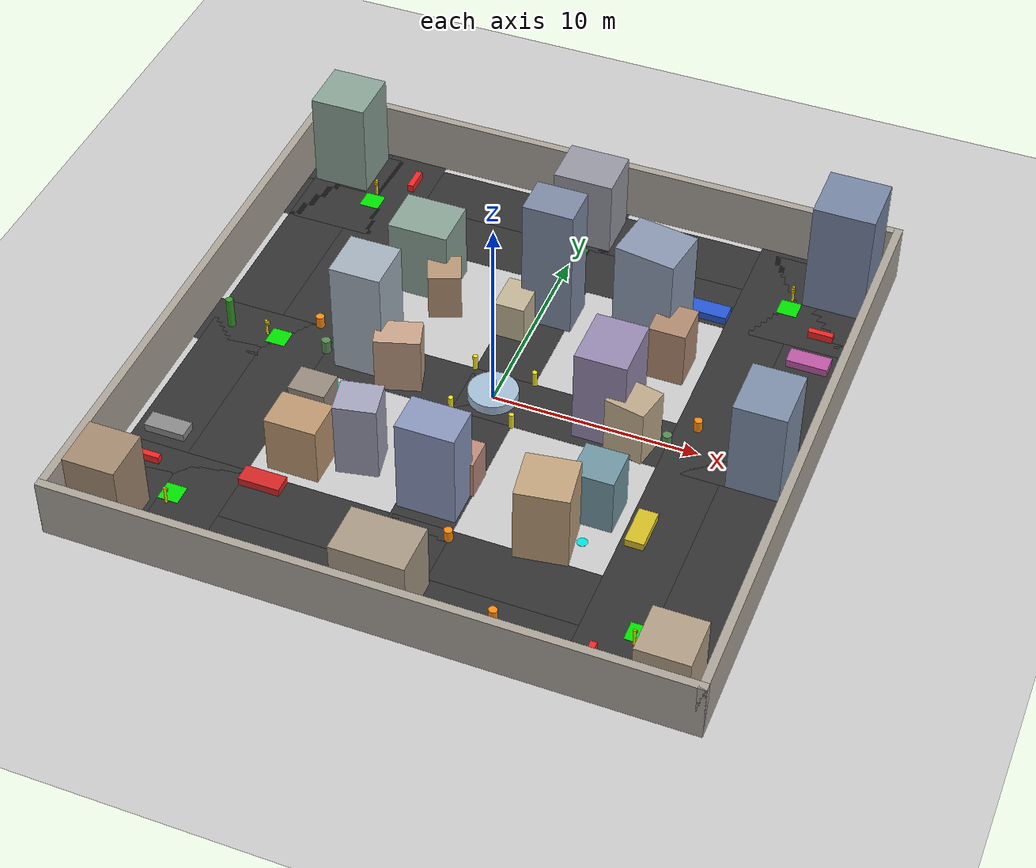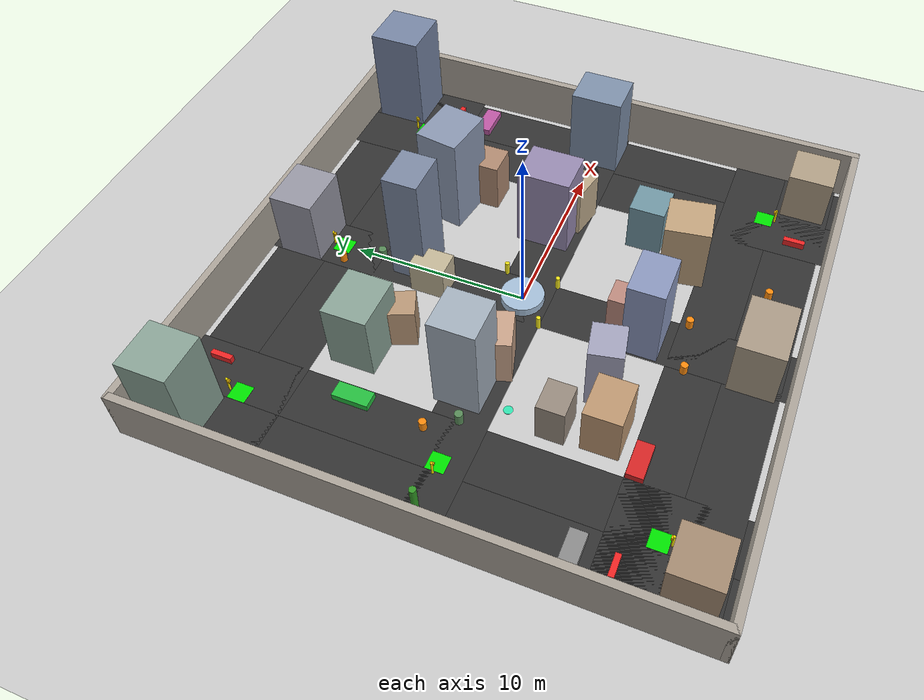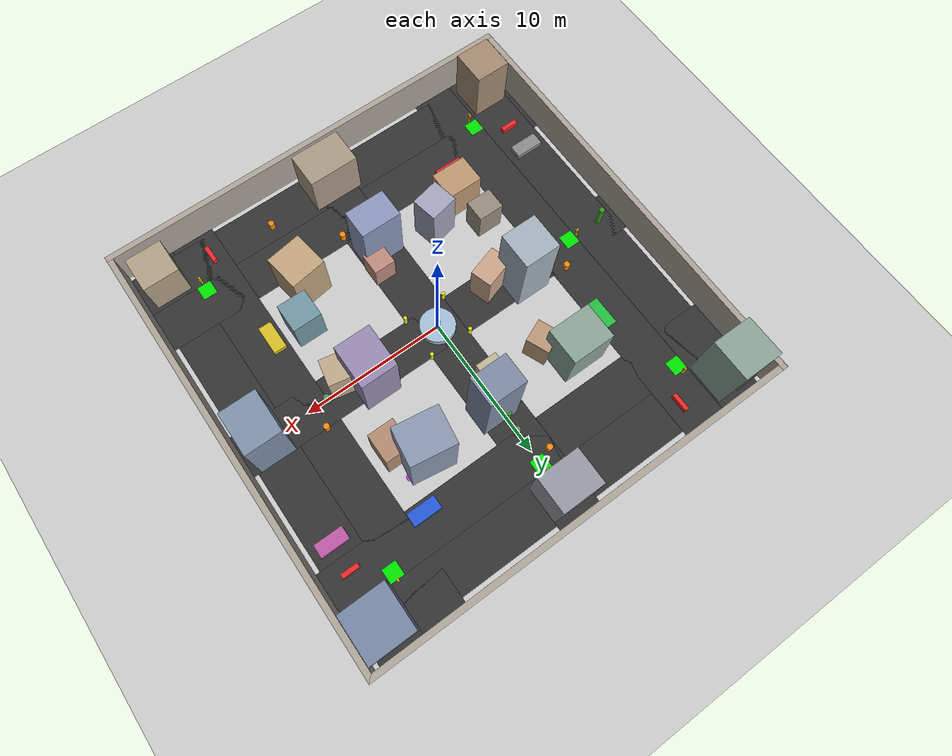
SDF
<sdf version="1.6">
 <world name="city_docking_world">
  <physics type="ode">
   <real_time_update_rate>1000</real_time_update_rate>
   <max_step_size>0.001</max_step_size>
   <real_time_factor>1.0</real_time_factor>
  </physics>
  <scene>
   <ambient>0.45 0.45 0.45 1</ambient>
   <background>0.55 0.65 0.8 1</background>
   <shadows>true</shadows>
  </scene>
  <light name="sun" type="directional">
   <pose>0 0 20 0 0 0</pose>
   <diffuse>0.9 0.9 0.85 1</diffuse>
   <specular>0.3 0.3 0.3 1</specular>
   <direction>-0.4 0.2 -1</direction>
   <attenuation><range>1000</range><constant>0.9</constant></attenuation>
  </light>
  <light name="sl_sw" type="point">
   <pose>-10 -10 4 0 0 0</pose>
   <diffuse>1 0.95 0.7 1</diffuse>
   <attenuation>
    <range>12</range>
    <constant>0.4</constant>
    <linear>0.05</linear>
    <quadratic>0.002</quadratic>
   </attenuation>
  </light>
  <light name="sl_se" type="point">
   <pose>10 -10 4 0 0 0</pose>
   <diffuse>1 0.95 0.7 1</diffuse>
   <attenuation>
    <range>12</range>
    <constant>0.4</constant>
    <linear>0.05</linear>
    <quadratic>0.002</quadratic>
   </attenuation>
  </light>
  <light name="sl_nw" type="point">
   <pose>-10 10 4 0 0 0</pose>
   <diffuse>1 0.95 0.7 1</diffuse>
   <attenuation>
    <range>12</range>
    <constant>0.4</constant>
    <linear>0.05</linear>
    <quadratic>0.002</quadratic>
   </attenuation>
  </light>
  <light name="sl_ne" type="point">
   <pose>10 10 4 0 0 0</pose>
   <diffuse>1 0.95 0.7 1</diffuse>
   <attenuation>
    <range>12</range>
    <constant>0.4</constant>
    <linear>0.05</linear>
    <quadratic>0.002</quadratic>
   </attenuation>
  </light>
  <light name="sl_c" type="point">
   <pose>0 0 5 0 0 0</pose>
   <diffuse>1 0.95 0.7 1</diffuse>
   <attenuation>
    <range>15</range>
    <constant>0.3</constant>
    <linear>0.04</linear>
    <quadratic>0.001</quadratic>
   </attenuation>
  </light>
  <include><uri>model://ground_plane</uri></include>
  <model name="road_ew_centre">
   <static>true</static>
   <pose>0  0 0.005 0 0 0</pose>
   <link name="link">
    <collision name="c"><geometry><box><size>30.0 3.0 0.01</size></box></geometry></collision>
    <visual name="v">
     <geometry><box><size>30.0 3.0 0.01</size></box></geometry>
     <material><ambient>0.18 0.18 0.18 1</ambient><diffuse>0.2 0.2 0.2 1</diffuse></material>
    </visual>
   </link>
  </model>
  <model name="road_ew_south">
   <static>true</static>
   <pose>0 -10 0.005 0 0 0</pose>
   <link name="link">
    <collision name="c"><geometry><box><size>30.0 3.0 0.01</size></box></geometry></collision>
    <visual name="v">
     <geometry><box><size>30.0 3.0 0.01</size></box></geometry>
     <material><ambient>0.18 0.18 0.18 1</ambient><diffuse>0.2 0.2 0.2 1</diffuse></material>
    </visual>
   </link>
  </model>
  <model name="road_ew_north">
   <static>true</static>
   <pose>0 10 0.005 0 0 0</pose>
   <link name="link">
    <collision name="c"><geometry><box><size>30.0 3.0 0.01</size></box></geometry></collision>
    <visual name="v">
     <geometry><box><size>30.0 3.0 0.01</size></box></geometry>
     <material><ambient>0.18 0.18 0.18 1</ambient><diffuse>0.2 0.2 0.2 1</diffuse></material>
    </visual>
   </link>
  </model>
  <model name="road_ns_centre">
   <static>true</static>
   <pose>0  0 0.005 0 0 0</pose>
   <link name="link">
    <collision name="c"><geometry><box><size>3.0 30.0 0.01</size></box></geometry></collision>
    <visual name="v">
     <geometry><box><size>3.0 30.0 0.01</size></box></geometry>
     <material><ambient>0.18 0.18 0.18 1</ambient><diffuse>0.2 0.2 0.2 1</diffuse></material>
    </visual>
   </link>
  </model>
  <model name="road_ns_west">
   <static>true</static>
   <pose>-10 0 0.005 0 0 0</pose>
   <link name="link">
    <collision name="c"><geometry><box><size>3.0 30.0 0.01</size></box></geometry></collision>
    <visual name="v">
     <geometry><box><size>3.0 30.0 0.01</size></box></geometry>
     <material><ambient>0.18 0.18 0.18 1</ambient><diffuse>0.2 0.2 0.2 1</diffuse></material>
    </visual>
   </link>
  </model>
  <model name="road_ns_east">
   <static>true</static>
   <pose>10 0 0.005 0 0 0</pose>
   <link name="link">
    <collision name="c"><geometry><box><size>3.0 30.0 0.01</size></box></geometry></collision>
    <visual name="v">
     <geometry><box><size>3.0 30.0 0.01</size></box></geometry>
     <material><ambient>0.18 0.18 0.18 1</ambient><diffuse>0.2 0.2 0.2 1</diffuse></material>
    </visual>
   </link>
  </model>
  <model name="road_perim_n">
   <static>true</static>
   <pose>0 13 0.005 0 0 0</pose>
   <link name="link">
    <collision name="c"><geometry><box><size>30.0 3.0 0.01</size></box></geometry></collision>
    <visual name="v">
     <geometry><box><size>30.0 3.0 0.01</size></box></geometry>
     <material><ambient>0.18 0.18 0.18 1</ambient><diffuse>0.2 0.2 0.2 1</diffuse></material>
    </visual>
   </link>
  </model>
  <model name="road_perim_s">
   <static>true</static>
   <pose>0 -13 0.005 0 0 0</pose>
   <link name="link">
    <collision name="c"><geometry><box><size>30.0 3.0 0.01</size></box></geometry></collision>
    <visual name="v">
     <geometry><box><size>30.0 3.0 0.01</size></box></geometry>
     <material><ambient>0.18 0.18 0.18 1</ambient><diffuse>0.2 0.2 0.2 1</diffuse></material>
    </visual>
   </link>
  </model>
  <model name="road_perim_w">
   <static>true</static>
   <pose>-13 0 0.005 0 0 0</pose>
   <link name="link">
    <collision name="c"><geometry><box><size>3.0 30.0 0.01</size></box></geometry></collision>
    <visual name="v">
     <geometry><box><size>3.0 30.0 0.01</size></box></geometry>
     <material><ambient>0.18 0.18 0.18 1</ambient><diffuse>0.2 0.2 0.2 1</diffuse></material>
    </visual>
   </link>
  </model>
  <model name="road_perim_e">
   <static>true</static>
   <pose>13 0 0.005 0 0 0</pose>
   <link name="link">
    <collision name="c"><geometry><box><size>3.0 30.0 0.01</size></box></geometry></collision>
    <visual name="v">
     <geometry><box><size>3.0 30.0 0.01</size></box></geometry>
     <material><ambient>0.18 0.18 0.18 1</ambient><diffuse>0.2 0.2 0.2 1</diffuse></material>
    </visual>
   </link>
  </model>
  <model name="wall_north">
   <static>true</static>
   <pose>0 15 1.5 0 0 0</pose>
   <link name="link">
    <collision name="c"><geometry><box><size>30.4 0.4 3.0</size></box></geometry></collision>
    <visual name="v">
     <geometry><box><size>30.4 0.4 3.0</size></box></geometry>
     <material><ambient>0.65 0.62 0.58 1</ambient><diffuse>0.68 0.65 0.61 1</diffuse></material>
    </visual>
   </link>
  </model>
  <model name="wall_south">
   <static>true</static>
   <pose>0 -15 1.5 0 0 0</pose>
   <link name="link">
    <collision name="c"><geometry><box><size>30.4 0.4 3.0</size></box></geometry></collision>
    <visual name="v">
     <geometry><box><size>30.4 0.4 3.0</size></box></geometry>
     <material><ambient>0.65 0.62 0.58 1</ambient><diffuse>0.68 0.65 0.61 1</diffuse></material>
    </visual>
   </link>
  </model>
  <model name="wall_east">
   <static>true</static>
   <pose>15 0 1.5 0 0 0</pose>
   <link name="link">
    <collision name="c"><geometry><box><size>0.4 30.4 3.0</size></box></geometry></collision>
    <visual name="v">
     <geometry><box><size>0.4 30.4 3.0</size></box></geometry>
     <material><ambient>0.65 0.62 0.58 1</ambient><diffuse>0.68 0.65 0.61 1</diffuse></material>
    </visual>
   </link>
  </model>
  <model name="wall_west">
   <static>true</static>
   <pose>-15 0 1.5 0 0 0</pose>
   <link name="link">
    <collision name="c"><geometry><box><size>0.4 30.4 3.0</size></box></geometry></collision>
    <visual name="v">
     <geometry><box><size>0.4 30.4 3.0</size></box></geometry>
     <material><ambient>0.65 0.62 0.58 1</ambient><diffuse>0.68 0.65 0.61 1</diffuse></material>
    </visual>
   </link>
  </model>
  <model name="bldg_sw_a">
   <static>true</static>
   <pose>-6.5 -7.0 1.5 0 0 0</pose>
   <link name="link">
    <collision name="c"><geometry><box><size>2.5 2.0 3.0</size></box></geometry></collision>
    <visual name="v">
     <geometry><box><size>2.5 2.0 3.0</size></box></geometry>
     <material><ambient>0.70 0.55 0.40 1</ambient><diffuse>0.75 0.60 0.45 1</diffuse></material>
    </visual>
   </link>
  </model>
  <model name="bldg_sw_b">
   <static>true</static>
   <pose>-4.0 -6.0 2.0 0 0 0.2</pose>
   <link name="link">
    <collision name="c"><geometry><box><size>2.0 1.8 4.0</size></box></geometry></collision>
    <visual name="v">
     <geometry><box><size>2.0 1.8 4.0</size></box></geometry>
     <material><ambient>0.60 0.60 0.70 1</ambient><diffuse>0.65 0.65 0.75 1</diffuse></material>
    </visual>
   </link>
  </model>
  <model name="bldg_sw_c">
   <static>true</static>
   <pose>-7.0 -4.5 1.25 0 0 0</pose>
   <link name="link">
    <collision name="c"><geometry><box><size>1.8 1.5 2.5</size></box></geometry></collision>
    <visual name="v">
     <geometry><box><size>1.8 1.5 2.5</size></box></geometry>
     <material><ambient>0.55 0.50 0.45 1</ambient><diffuse>0.60 0.55 0.50 1</diffuse></material>
    </visual>
   </link>
  </model>
  <model name="bldg_s_a">
   <static>true</static>
   <pose>0.0 -7.0 2.5 0 0 0</pose>
   <link name="link">
    <collision name="c"><geometry><box><size>2.8 2.0 5.0</size></box></geometry></collision>
    <visual name="v">
     <geometry><box><size>2.8 2.0 5.0</size></box></geometry>
     <material><ambient>0.50 0.55 0.70 1</ambient><diffuse>0.55 0.60 0.75 1</diffuse></material>
    </visual>
   </link>
  </model>
  <model name="bldg_s_b">
   <static>true</static>
   <pose>0.8 -5.5 1.0 0 0 0</pose>
   <link name="link">
    <collision name="c"><geometry><box><size>1.5 1.5 2.0</size></box></geometry></collision>
    <visual name="v">
     <geometry><box><size>1.5 1.5 2.0</size></box></geometry>
     <material><ambient>0.70 0.50 0.45 1</ambient><diffuse>0.75 0.55 0.50 1</diffuse></material>
    </visual>
   </link>
  </model>
  <model name="bldg_se_a">
   <static>true</static>
   <pose>5.5 -7.5 2.0 0 0 0.15</pose>
   <link name="link">
    <collision name="c"><geometry><box><size>2.5 2.5 4.0</size></box></geometry></collision>
    <visual name="v">
     <geometry><box><size>2.5 2.5 4.0</size></box></geometry>
     <material><ambient>0.72 0.60 0.45 1</ambient><diffuse>0.77 0.65 0.50 1</diffuse></material>
    </visual>
   </link>
  </model>
  <model name="bldg_se_b">
   <static>true</static>
   <pose>7.0 -5.0 1.5 0 0 0</pose>
   <link name="link">
    <collision name="c"><geometry><box><size>2.0 2.0 3.0</size></box></geometry></collision>
    <visual name="v">
     <geometry><box><size>2.0 2.0 3.0</size></box></geometry>
     <material><ambient>0.40 0.55 0.60 1</ambient><diffuse>0.45 0.60 0.65 1</diffuse></material>
    </visual>
   </link>
  </model>
  <model name="bldg_w_a">
   <static>true</static>
   <pose>-6.5 0.5 3.0 0 0 0</pose>
   <link name="link">
    <collision name="c"><geometry><box><size>2.5 2.5 6.0</size></box></geometry></collision>
    <visual name="v">
     <geometry><box><size>2.5 2.5 6.0</size></box></geometry>
     <material><ambient>0.60 0.65 0.70 1</ambient><diffuse>0.65 0.70 0.75 1</diffuse></material>
    </visual>
   </link>
  </model>
  <model name="bldg_w_b">
   <static>true</static>
   <pose>-4.5 -0.5 1.5 0 0 0.3</pose>
   <link name="link">
    <collision name="c"><geometry><box><size>2.2 1.5 3.0</size></box></geometry></collision>
    <visual name="v">
     <geometry><box><size>2.2 1.5 3.0</size></box></geometry>
     <material><ambient>0.75 0.60 0.50 1</ambient><diffuse>0.80 0.65 0.55 1</diffuse></material>
    </visual>
   </link>
  </model>
  <model name="plaza_base">
   <static>true</static>
   <pose>0 0 0.25 0 0 0</pose>
   <link name="link">
    <collision name="c">
     <geometry><cylinder><radius>1.2</radius><length>0.5</length></cylinder></geometry>
    </collision>
    <visual name="v">
     <geometry><cylinder><radius>1.2</radius><length>0.5</length></cylinder></geometry>
     <material>
      <ambient>0.6 0.7 0.8 1</ambient>
      <diffuse>0.65 0.75 0.85 1</diffuse>
      <emissive>0.05 0.1 0.15 1</emissive>
     </material>
    </visual>
   </link>
  </model>
  <model name="plaza_jet">
   <static>true</static>
   <pose>0 0 0.65 0 0 0</pose>
   <link name="link">
    <collision name="c">
     <geometry><cylinder><radius>0.15</radius><length>0.8</length></cylinder></geometry>
    </collision>
    <visual name="v">
     <geometry><cylinder><radius>0.15</radius><length>0.8</length></cylinder></geometry>
     <material>
      <ambient>0.3 0.6 0.9 1</ambient>
      <diffuse>0.35 0.65 0.95 1</diffuse>
      <emissive>0.0 0.2 0.4 1</emissive>
     </material>
    </visual>
   </link>
  </model>
  <model name="bldg_e_a">
   <static>true</static>
   <pose>5.5 0.5 2.5 0 0 0</pose>
   <link name="link">
    <collision name="c"><geometry><box><size>2.5 3.0 5.0</size></box></geometry></collision>
    <visual name="v">
     <geometry><box><size>2.5 3.0 5.0</size></box></geometry>
     <material><ambient>0.55 0.50 0.65 1</ambient><diffuse>0.60 0.55 0.70 1</diffuse></material>
    </visual>
   </link>
  </model>
  <model name="bldg_e_b">
   <static>true</static>
   <pose>7.0 -0.5 1.5 0 0 -0.2</pose>
   <link name="link">
    <collision name="c"><geometry><box><size>2.0 1.8 3.0</size></box></geometry></collision>
    <visual name="v">
     <geometry><box><size>2.0 1.8 3.0</size></box></geometry>
     <material><ambient>0.70 0.62 0.50 1</ambient><diffuse>0.75 0.67 0.55 1</diffuse></material>
    </visual>
   </link>
  </model>
  <model name="bldg_nw_a">
   <static>true</static>
   <pose>-6.0 6.5 2.0 0 0 0</pose>
   <link name="link">
    <collision name="c"><geometry><box><size>3.0 2.5 4.0</size></box></geometry></collision>
    <visual name="v">
     <geometry><box><size>3.0 2.5 4.0</size></box></geometry>
     <material><ambient>0.50 0.60 0.55 1</ambient><diffuse>0.55 0.65 0.60 1</diffuse></material>
    </visual>
   </link>
  </model>
  <model name="bldg_nw_b">
   <static>true</static>
   <pose>-4.5 5.0 1.25 0 0 0.4</pose>
   <link name="link">
    <collision name="c"><geometry><box><size>1.6 1.6 2.5</size></box></geometry></collision>
    <visual name="v">
     <geometry><box><size>1.6 1.6 2.5</size></box></geometry>
     <material><ambient>0.68 0.55 0.42 1</ambient><diffuse>0.73 0.60 0.47 1</diffuse></material>
    </visual>
   </link>
  </model>
  <model name="bldg_n_a">
   <static>true</static>
   <pose>0.5 6.5 3.5 0 0 0</pose>
   <link name="link">
    <collision name="c"><geometry><box><size>2.5 2.0 7.0</size></box></geometry></collision>
    <visual name="v">
     <geometry><box><size>2.5 2.0 7.0</size></box></geometry>
     <material><ambient>0.45 0.50 0.60 1</ambient><diffuse>0.50 0.55 0.65 1</diffuse></material>
    </visual>
   </link>
  </model>
  <model name="bldg_n_b">
   <static>true</static>
   <pose>-0.8 5.0 1.0 0 0 0</pose>
   <link name="link">
    <collision name="c"><geometry><box><size>1.5 2.0 2.0</size></box></geometry></collision>
    <visual name="v">
     <geometry><box><size>1.5 2.0 2.0</size></box></geometry>
     <material><ambient>0.72 0.67 0.55 1</ambient><diffuse>0.77 0.72 0.60 1</diffuse></material>
    </visual>
   </link>
  </model>
  <model name="bldg_ne_a">
   <static>true</static>
   <pose>5.5 6.5 3.0 0 0 -0.15</pose>
   <link name="link">
    <collision name="c"><geometry><box><size>3.0 2.5 6.0</size></box></geometry></collision>
    <visual name="v">
     <geometry><box><size>3.0 2.5 6.0</size></box></geometry>
     <material><ambient>0.50 0.55 0.65 1</ambient><diffuse>0.55 0.60 0.70 1</diffuse></material>
    </visual>
   </link>
  </model>
  <model name="bldg_ne_b">
   <static>true</static>
   <pose>7.0 5.0 1.5 0 0 0</pose>
   <link name="link">
    <collision name="c"><geometry><box><size>1.8 2.0 3.0</size></box></geometry></collision>
    <visual name="v">
     <geometry><box><size>1.8 2.0 3.0</size></box></geometry>
     <material><ambient>0.65 0.50 0.40 1</ambient><diffuse>0.70 0.55 0.45 1</diffuse></material>
    </visual>
   </link>
  </model>
  <model name="bldg_oc_sw">
   <static>true</static>
   <pose>-13 -13 2.0 0 0 0</pose>
   <link name="link">
    <collision name="c"><geometry><box><size>2.5 2.5 4.0</size></box></geometry></collision>
    <visual name="v">
     <geometry><box><size>2.5 2.5 4.0</size></box></geometry>
     <material><ambient>0.60 0.50 0.40 1</ambient><diffuse>0.65 0.55 0.45 1</diffuse></material>
    </visual>
   </link>
  </model>
  <model name="bldg_oc_nw">
   <static>true</static>
   <pose>-13 13 2.5 0 0 0</pose>
   <link name="link">
    <collision name="c"><geometry><box><size>2.8 2.8 5.0</size></box></geometry></collision>
    <visual name="v">
     <geometry><box><size>2.8 2.8 5.0</size></box></geometry>
     <material><ambient>0.50 0.60 0.55 1</ambient><diffuse>0.55 0.65 0.60 1</diffuse></material>
    </visual>
   </link>
  </model>
  <model name="bldg_oc_se">
   <static>true</static>
   <pose>13 -13 1.5 0 0 0</pose>
   <link name="link">
    <collision name="c"><geometry><box><size>2.5 2.5 3.0</size></box></geometry></collision>
    <visual name="v">
     <geometry><box><size>2.5 2.5 3.0</size></box></geometry>
     <material><ambient>0.65 0.58 0.48 1</ambient><diffuse>0.70 0.63 0.53 1</diffuse></material>
    </visual>
   </link>
  </model>
  <model name="bldg_oc_ne">
   <static>true</static>
   <pose>13 13 3.0 0 0 0</pose>
   <link name="link">
    <collision name="c"><geometry><box><size>3.0 3.0 6.0</size></box></geometry></collision>
    <visual name="v">
     <geometry><box><size>3.0 3.0 6.0</size></box></geometry>
     <material><ambient>0.42 0.48 0.60 1</ambient><diffuse>0.47 0.53 0.65 1</diffuse></material>
    </visual>
   </link>
  </model>
  <model name="bldg_om_n">
   <static>true</static>
   <pose>0 13 2.0 0 0 0</pose>
   <link name="link">
    <collision name="c"><geometry><box><size>3.0 2.5 4.0</size></box></geometry></collision>
    <visual name="v">
     <geometry><box><size>3.0 2.5 4.0</size></box></geometry>
     <material><ambient>0.55 0.55 0.60 1</ambient><diffuse>0.60 0.60 0.65 1</diffuse></material>
    </visual>
   </link>
  </model>
  <model name="bldg_om_s">
   <static>true</static>
   <pose>0 -13 1.8 0 0 0</pose>
   <link name="link">
    <collision name="c"><geometry><box><size>3.5 2.5 3.5</size></box></geometry></collision>
    <visual name="v">
     <geometry><box><size>3.5 2.5 3.5</size></box></geometry>
     <material><ambient>0.62 0.56 0.48 1</ambient><diffuse>0.67 0.61 0.53 1</diffuse></material>
    </visual>
   </link>
  </model>
  <model name="bldg_om_e">
   <static>true</static>
   <pose>13 0 2.5 0 0 0</pose>
   <link name="link">
    <collision name="c"><geometry><box><size>2.5 3.0 5.0</size></box></geometry></collision>
    <visual name="v">
     <geometry><box><size>2.5 3.0 5.0</size></box></geometry>
     <material><ambient>0.45 0.52 0.62 1</ambient><diffuse>0.50 0.57 0.67 1</diffuse></material>
    </visual>
   </link>
  </model>
  <model name="car_1">
   <static>true</static>
   <pose>-7.5 -9.0 0.2 0 0 0</pose>
   <link name="link">
    <collision name="c"><geometry><box><size>2.0 0.9 0.4</size></box></geometry></collision>
    <visual name="v">
     <geometry><box><size>2.0 0.9 0.4</size></box></geometry>
     <material><ambient>0.8 0.1 0.1 1</ambient><diffuse>0.85 0.15 0.15 1</diffuse></material>
    </visual>
   </link>
  </model>
  <model name="car_2">
   <static>true</static>
   <pose>7.5  9.2 0.2 0 0 0</pose>
   <link name="link">
    <collision name="c"><geometry><box><size>2.0 0.9 0.4</size></box></geometry></collision>
    <visual name="v">
     <geometry><box><size>2.0 0.9 0.4</size></box></geometry>
     <material><ambient>0.1 0.3 0.8 1</ambient><diffuse>0.15 0.35 0.85 1</diffuse></material>
    </visual>
   </link>
  </model>
  <model name="car_3">
   <static>true</static>
   <pose>-9.2 5.5 0.2 0 0 1.5708</pose>
   <link name="link">
    <collision name="c"><geometry><box><size>2.0 0.9 0.4</size></box></geometry></collision>
    <visual name="v">
     <geometry><box><size>2.0 0.9 0.4</size></box></geometry>
     <material><ambient>0.1 0.7 0.2 1</ambient><diffuse>0.15 0.75 0.25 1</diffuse></material>
    </visual>
   </link>
  </model>
  <model name="car_4">
   <static>true</static>
   <pose>9.2 -5.5 0.2 0 0 1.5708</pose>
   <link name="link">
    <collision name="c"><geometry><box><size>2.0 0.9 0.4</size></box></geometry></collision>
    <visual name="v">
     <geometry><box><size>2.0 0.9 0.4</size></box></geometry>
     <material><ambient>0.8 0.7 0.1 1</ambient><diffuse>0.85 0.75 0.15 1</diffuse></material>
    </visual>
   </link>
  </model>
  <model name="car_5">
   <static>true</static>
   <pose>-13.0 -7.5 0.2 0 0 0</pose>
   <link name="link">
    <collision name="c"><geometry><box><size>2.0 0.9 0.4</size></box></geometry></collision>
    <visual name="v">
     <geometry><box><size>2.0 0.9 0.4</size></box></geometry>
     <material><ambient>0.5 0.5 0.5 1</ambient><diffuse>0.55 0.55 0.55 1</diffuse></material>
    </visual>
   </link>
  </model>
  <model name="car_6">
   <static>true</static>
   <pose>13.0 7.5 0.2 0 0 0</pose>
   <link name="link">
    <collision name="c"><geometry><box><size>2.0 0.9 0.4</size></box></geometry></collision>
    <visual name="v">
     <geometry><box><size>2.0 0.9 0.4</size></box></geometry>
     <material><ambient>0.7 0.3 0.6 1</ambient><diffuse>0.75 0.35 0.65 1</diffuse></material>
    </visual>
   </link>
  </model>
  <model name="cone_1">
   <static>true</static>
   <pose>-1.5  -9.5 0.3 0 0 0</pose>
   <link name="link">
    <collision name="c">
     <geometry><cylinder><radius>0.2</radius><length>0.6</length></cylinder></geometry>
    </collision>
    <visual name="v">
     <geometry><cylinder><radius>0.2</radius><length>0.6</length></cylinder></geometry>
     <material><ambient>1.0 0.5 0.0 1</ambient><diffuse>1.0 0.55 0.05 1</diffuse></material>
    </visual>
   </link>
  </model>
  <model name="cone_2">
   <static>true</static>
   <pose>1.5  -9.0 0.3 0 0 0</pose>
   <link name="link">
    <collision name="c">
     <geometry><cylinder><radius>0.2</radius><length>0.6</length></cylinder></geometry>
    </collision>
    <visual name="v">
     <geometry><cylinder><radius>0.2</radius><length>0.6</length></cylinder></geometry>
     <material><ambient>1.0 0.5 0.0 1</ambient><diffuse>1.0 0.55 0.05 1</diffuse></material>
    </visual>
   </link>
  </model>
  <model name="cone_3">
   <static>true</static>
   <pose>-9.5   1.5 0.3 0 0 0</pose>
   <link name="link">
    <collision name="c">
     <geometry><cylinder><radius>0.2</radius><length>0.6</length></cylinder></geometry>
    </collision>
    <visual name="v">
     <geometry><cylinder><radius>0.2</radius><length>0.6</length></cylinder></geometry>
     <material><ambient>1.0 0.5 0.0 1</ambient><diffuse>1.0 0.55 0.05 1</diffuse></material>
    </visual>
   </link>
  </model>
  <model name="cone_4">
   <static>true</static>
   <pose>9.5   1.5 0.3 0 0 0</pose>
   <link name="link">
    <collision name="c">
     <geometry><cylinder><radius>0.2</radius><length>0.6</length></cylinder></geometry>
    </collision>
    <visual name="v">
     <geometry><cylinder><radius>0.2</radius><length>0.6</length></cylinder></geometry>
     <material><ambient>1.0 0.5 0.0 1</ambient><diffuse>1.0 0.55 0.05 1</diffuse></material>
    </visual>
   </link>
  </model>
  <model name="cone_5">
   <static>true</static>
   <pose>-1.0  10.5 0.3 0 0 0</pose>
   <link name="link">
    <collision name="c">
     <geometry><cylinder><radius>0.2</radius><length>0.6</length></cylinder></geometry>
    </collision>
    <visual name="v">
     <geometry><cylinder><radius>0.2</radius><length>0.6</length></cylinder></geometry>
     <material><ambient>1.0 0.5 0.0 1</ambient><diffuse>1.0 0.55 0.05 1</diffuse></material>
    </visual>
   </link>
  </model>
  <model name="cone_6">
   <static>true</static>
   <pose>5.0 -12.5 0.3 0 0 0</pose>
   <link name="link">
    <collision name="c">
     <geometry><cylinder><radius>0.2</radius><length>0.6</length></cylinder></geometry>
    </collision>
    <visual name="v">
     <geometry><cylinder><radius>0.2</radius><length>0.6</length></cylinder></geometry>
     <material><ambient>1.0 0.5 0.0 1</ambient><diffuse>1.0 0.55 0.05 1</diffuse></material>
    </visual>
   </link>
  </model>
  <model name="tree_1">
   <static>true</static>
   <pose>-7.5  0.0 0.8 0 0 0</pose>
   <link name="link">
    <collision name="c">
     <geometry><cylinder><radius>0.18</radius><length>1.6</length></cylinder></geometry>
    </collision>
    <visual name="v">
     <geometry><cylinder><radius>0.18</radius><length>1.6</length></cylinder></geometry>
     <material><ambient>0.15 0.55 0.10 1</ambient><diffuse>0.20 0.60 0.15 1</diffuse></material>
    </visual>
   </link>
  </model>
  <model name="tree_2">
   <static>true</static>
   <pose>7.5  0.0 0.8 0 0 0</pose>
   <link name="link">
    <collision name="c">
     <geometry><cylinder><radius>0.18</radius><length>1.6</length></cylinder></geometry>
    </collision>
    <visual name="v">
     <geometry><cylinder><radius>0.18</radius><length>1.6</length></cylinder></geometry>
     <material><ambient>0.15 0.55 0.10 1</ambient><diffuse>0.20 0.60 0.15 1</diffuse></material>
    </visual>
   </link>
  </model>
  <model name="tree_3">
   <static>true</static>
   <pose>0.0 -7.5 0.8 0 0 0</pose>
   <link name="link">
    <collision name="c">
     <geometry><cylinder><radius>0.18</radius><length>1.6</length></cylinder></geometry>
    </collision>
    <visual name="v">
     <geometry><cylinder><radius>0.18</radius><length>1.6</length></cylinder></geometry>
     <material><ambient>0.15 0.55 0.10 1</ambient><diffuse>0.20 0.60 0.15 1</diffuse></material>
    </visual>
   </link>
  </model>
  <model name="tree_4">
   <static>true</static>
   <pose>0.0  7.5 0.8 0 0 0</pose>
   <link name="link">
    <collision name="c">
     <geometry><cylinder><radius>0.18</radius><length>1.6</length></cylinder></geometry>
    </collision>
    <visual name="v">
     <geometry><cylinder><radius>0.18</radius><length>1.6</length></cylinder></geometry>
     <material><ambient>0.15 0.55 0.10 1</ambient><diffuse>0.20 0.60 0.15 1</diffuse></material>
    </visual>
   </link>
  </model>
  <model name="tree_5">
   <static>true</static>
   <pose>-13.5  0.0 0.8 0 0 0</pose>
   <link name="link">
    <collision name="c">
     <geometry><cylinder><radius>0.18</radius><length>1.6</length></cylinder></geometry>
    </collision>
    <visual name="v">
     <geometry><cylinder><radius>0.18</radius><length>1.6</length></cylinder></geometry>
     <material><ambient>0.15 0.55 0.10 1</ambient><diffuse>0.20 0.60 0.15 1</diffuse></material>
    </visual>
   </link>
  </model>
  <model name="tree_6">
   <static>true</static>
   <pose>13.5  0.0 0.8 0 0 0</pose>
   <link name="link">
    <collision name="c">
     <geometry><cylinder><radius>0.18</radius><length>1.6</length></cylinder></geometry>
    </collision>
    <visual name="v">
     <geometry><cylinder><radius>0.18</radius><length>1.6</length></cylinder></geometry>
     <material><ambient>0.15 0.55 0.10 1</ambient><diffuse>0.20 0.60 0.15 1</diffuse></material>
    </visual>
   </link>
  </model>
  <model name="tree_7">
   <static>true</static>
   <pose>0.0  13.5 0.8 0 0 0</pose>
   <link name="link">
    <collision name="c">
     <geometry><cylinder><radius>0.18</radius><length>1.6</length></cylinder></geometry>
    </collision>
    <visual name="v">
     <geometry><cylinder><radius>0.18</radius><length>1.6</length></cylinder></geometry>
     <material><ambient>0.15 0.55 0.10 1</ambient><diffuse>0.20 0.60 0.15 1</diffuse></material>
    </visual>
   </link>
  </model>
  <model name="tree_8">
   <static>true</static>
   <pose>0.0 -13.5 0.8 0 0 0</pose>
   <link name="link">
    <collision name="c">
     <geometry><cylinder><radius>0.18</radius><length>1.6</length></cylinder></geometry>
    </collision>
    <visual name="v">
     <geometry><cylinder><radius>0.18</radius><length>1.6</length></cylinder></geometry>
     <material><ambient>0.15 0.55 0.10 1</ambient><diffuse>0.20 0.60 0.15 1</diffuse></material>
    </visual>
   </link>
  </model>
  <model name="bin_1">
   <static>true</static>
   <pose>-8.5  0.0 0.35 0 0 0</pose>
   <link name="link">
    <collision name="c">
     <geometry><cylinder><radius>0.22</radius><length>0.7</length></cylinder></geometry>
    </collision>
    <visual name="v">
     <geometry><cylinder><radius>0.22</radius><length>0.7</length></cylinder></geometry>
     <material><ambient>0.3 0.5 0.3 1</ambient><diffuse>0.35 0.55 0.35 1</diffuse></material>
    </visual>
   </link>
  </model>
  <model name="bin_2">
   <static>true</static>
   <pose>0.0  8.5 0.35 0 0 0</pose>
   <link name="link">
    <collision name="c">
     <geometry><cylinder><radius>0.22</radius><length>0.7</length></cylinder></geometry>
    </collision>
    <visual name="v">
     <geometry><cylinder><radius>0.22</radius><length>0.7</length></cylinder></geometry>
     <material><ambient>0.3 0.5 0.3 1</ambient><diffuse>0.35 0.55 0.35 1</diffuse></material>
    </visual>
   </link>
  </model>
  <model name="bin_3">
   <static>true</static>
   <pose>8.5  0.0 0.35 0 0 0</pose>
   <link name="link">
    <collision name="c">
     <geometry><cylinder><radius>0.22</radius><length>0.7</length></cylinder></geometry>
    </collision>
    <visual name="v">
     <geometry><cylinder><radius>0.22</radius><length>0.7</length></cylinder></geometry>
     <material><ambient>0.3 0.5 0.3 1</ambient><diffuse>0.35 0.55 0.35 1</diffuse></material>
    </visual>
   </link>
  </model>
  <model name="bollard_1">
   <static>true</static>
   <pose>-1.5  1.5 0.4 0 0 0</pose>
   <link name="link">
    <collision name="c">
     <geometry><cylinder><radius>0.12</radius><length>0.8</length></cylinder></geometry>
    </collision>
    <visual name="v">
     <geometry><cylinder><radius>0.12</radius><length>0.8</length></cylinder></geometry>
     <material><ambient>0.9 0.85 0.05 1</ambient><diffuse>0.95 0.90 0.10 1</diffuse></material>
    </visual>
   </link>
  </model>
  <model name="bollard_2">
   <static>true</static>
   <pose>1.5  1.5 0.4 0 0 0</pose>
   <link name="link">
    <collision name="c">
     <geometry><cylinder><radius>0.12</radius><length>0.8</length></cylinder></geometry>
    </collision>
    <visual name="v">
     <geometry><cylinder><radius>0.12</radius><length>0.8</length></cylinder></geometry>
     <material><ambient>0.9 0.85 0.05 1</ambient><diffuse>0.95 0.90 0.10 1</diffuse></material>
    </visual>
   </link>
  </model>
  <model name="bollard_3">
   <static>true</static>
   <pose>1.5 -1.5 0.4 0 0 0</pose>
   <link name="link">
    <collision name="c">
     <geometry><cylinder><radius>0.12</radius><length>0.8</length></cylinder></geometry>
    </collision>
    <visual name="v">
     <geometry><cylinder><radius>0.12</radius><length>0.8</length></cylinder></geometry>
     <material><ambient>0.9 0.85 0.05 1</ambient><diffuse>0.95 0.90 0.10 1</diffuse></material>
    </visual>
   </link>
  </model>
  <model name="bollard_4">
   <static>true</static>
   <pose>-1.5 -1.5 0.4 0 0 0</pose>
   <link name="link">
    <collision name="c">
     <geometry><cylinder><radius>0.12</radius><length>0.8</length></cylinder></geometry>
    </collision>
    <visual name="v">
     <geometry><cylinder><radius>0.12</radius><length>0.8</length></cylinder></geometry>
     <material><ambient>0.9 0.85 0.05 1</ambient><diffuse>0.95 0.90 0.10 1</diffuse></material>
    </visual>
   </link>
  </model>
  <model name="barrier_1">
   <static>true</static>
   <pose>-13 -9.5 0.2 0 0 0</pose>
   <link name="link">
    <collision name="c"><geometry><box><size>1.2 0.3 0.4</size></box></geometry></collision>
    <visual name="v">
     <geometry><box><size>1.2 0.3 0.4</size></box></geometry>
     <material><ambient>0.9 0.1 0.1 1</ambient><diffuse>0.95 0.15 0.15 1</diffuse></material>
    </visual>
   </link>
  </model>
  <model name="barrier_2">
   <static>true</static>
   <pose>13  9.5 0.2 0 0 0</pose>
   <link name="link">
    <collision name="c"><geometry><box><size>1.2 0.3 0.4</size></box></geometry></collision>
    <visual name="v">
     <geometry><box><size>1.2 0.3 0.4</size></box></geometry>
     <material><ambient>0.9 0.1 0.1 1</ambient><diffuse>0.95 0.15 0.15 1</diffuse></material>
    </visual>
   </link>
  </model>
  <model name="barrier_3">
   <static>true</static>
   <pose>-9.5  13  0.2 0 0 1.5708</pose>
   <link name="link">
    <collision name="c"><geometry><box><size>1.2 0.3 0.4</size></box></geometry></collision>
    <visual name="v">
     <geometry><box><size>1.2 0.3 0.4</size></box></geometry>
     <material><ambient>0.9 0.1 0.1 1</ambient><diffuse>0.95 0.15 0.15 1</diffuse></material>
    </visual>
   </link>
  </model>
  <model name="barrier_4">
   <static>true</static>
   <pose>9.5 -13  0.2 0 0 1.5708</pose>
   <link name="link">
    <collision name="c"><geometry><box><size>1.2 0.3 0.4</size></box></geometry></collision>
    <visual name="v">
     <geometry><box><size>1.2 0.3 0.4</size></box></geometry>
     <material><ambient>0.9 0.1 0.1 1</ambient><diffuse>0.95 0.15 0.15 1</diffuse></material>
    </visual>
   </link>
  </model>
  <model name="dock_pad_1">
   <static>true</static>
   <pose>-11.0 -11.0 0.01 0 0 0</pose>
   <link name="link">
    <collision name="c"><geometry><box><size>1.0 1.0 0.02</size></box></geometry></collision>
    <visual name="v">
     <geometry><box><size>1.0 1.0 0.02</size></box></geometry>
     <material>
      <ambient>0.0 0.9 0.0 1</ambient>
      <diffuse>0.0 0.9 0.0 1</diffuse>
      <emissive>0.0 0.3 0.0 1</emissive>
     </material>
    </visual>
   </link>
  </model>
  <model name="dock_pole_1">
   <static>true</static>
   <pose>-11.0 -11.6 0.45 0 0 0</pose>
   <link name="link">
    <collision name="c">
     <geometry><cylinder><radius>0.06</radius><length>0.9</length></cylinder></geometry>
    </collision>
    <visual name="v">
     <geometry><cylinder><radius>0.06</radius><length>0.9</length></cylinder></geometry>
     <material>
      <ambient>1.0 0.9 0.0 1</ambient>
      <diffuse>1.0 0.9 0.0 1</diffuse>
      <emissive>0.5 0.4 0.0 1</emissive>
     </material>
    </visual>
   </link>
  </model>
  <model name="dock_conn_1">
   <static>true</static>
   <pose>-11.0 -11.52 0.72 0 0 0</pose>
   <link name="link">
    <collision name="c"><geometry><box><size>0.18 0.1 0.18</size></box></geometry></collision>
    <visual name="v">
     <geometry><box><size>0.18 0.1 0.18</size></box></geometry>
     <material><ambient>0.9 0.7 0.0 1</ambient><diffuse>0.9 0.7 0.0 1</diffuse></material>
    </visual>
   </link>
  </model>
  <model name="dock_pad_2">
   <static>true</static>
   <pose>11.0 -11.0 0.01 0 0 0</pose>
   <link name="link">
    <collision name="c"><geometry><box><size>1.0 1.0 0.02</size></box></geometry></collision>
    <visual name="v">
     <geometry><box><size>1.0 1.0 0.02</size></box></geometry>
     <material>
      <ambient>0.0 0.9 0.0 1</ambient>
      <diffuse>0.0 0.9 0.0 1</diffuse>
      <emissive>0.0 0.3 0.0 1</emissive>
     </material>
    </visual>
   </link>
  </model>
  <model name="dock_pole_2">
   <static>true</static>
   <pose>11.0 -11.6 0.45 0 0 0</pose>
   <link name="link">
    <collision name="c">
     <geometry><cylinder><radius>0.06</radius><length>0.9</length></cylinder></geometry>
    </collision>
    <visual name="v">
     <geometry><cylinder><radius>0.06</radius><length>0.9</length></cylinder></geometry>
     <material>
      <ambient>1.0 0.9 0.0 1</ambient>
      <diffuse>1.0 0.9 0.0 1</diffuse>
      <emissive>0.5 0.4 0.0 1</emissive>
     </material>
    </visual>
   </link>
  </model>
  <model name="dock_conn_2">
   <static>true</static>
   <pose>11.0 -11.52 0.72 0 0 0</pose>
   <link name="link">
    <collision name="c"><geometry><box><size>0.18 0.1 0.18</size></box></geometry></collision>
    <visual name="v">
     <geometry><box><size>0.18 0.1 0.18</size></box></geometry>
     <material><ambient>0.9 0.7 0.0 1</ambient><diffuse>0.9 0.7 0.0 1</diffuse></material>
    </visual>
   </link>
  </model>
  <model name="dock_pad_3">
   <static>true</static>
   <pose>-11.0 11.0 0.01 0 0 0</pose>
   <link name="link">
    <collision name="c"><geometry><box><size>1.0 1.0 0.02</size></box></geometry></collision>
    <visual name="v">
     <geometry><box><size>1.0 1.0 0.02</size></box></geometry>
     <material>
      <ambient>0.0 0.9 0.0 1</ambient>
      <diffuse>0.0 0.9 0.0 1</diffuse>
      <emissive>0.0 0.3 0.0 1</emissive>
     </material>
    </visual>
   </link>
  </model>
  <model name="dock_pole_3">
   <static>true</static>
   <pose>-11.0 11.6 0.45 0 0 0</pose>
   <link name="link">
    <collision name="c">
     <geometry><cylinder><radius>0.06</radius><length>0.9</length></cylinder></geometry>
    </collision>
    <visual name="v">
     <geometry><cylinder><radius>0.06</radius><length>0.9</length></cylinder></geometry>
     <material>
      <ambient>1.0 0.9 0.0 1</ambient>
      <diffuse>1.0 0.9 0.0 1</diffuse>
      <emissive>0.5 0.4 0.0 1</emissive>
     </material>
    </visual>
   </link>
  </model>
  <model name="dock_conn_3">
   <static>true</static>
   <pose>-11.0 11.52 0.72 0 0 0</pose>
   <link name="link">
    <collision name="c"><geometry><box><size>0.18 0.1 0.18</size></box></geometry></collision>
    <visual name="v">
     <geometry><box><size>0.18 0.1 0.18</size></box></geometry>
     <material><ambient>0.9 0.7 0.0 1</ambient><diffuse>0.9 0.7 0.0 1</diffuse></material>
    </visual>
   </link>
  </model>
  <model name="dock_pad_4">
   <static>true</static>
   <pose>11.0 11.0 0.01 0 0 0</pose>
   <link name="link">
    <collision name="c"><geometry><box><size>1.0 1.0 0.02</size></box></geometry></collision>
    <visual name="v">
     <geometry><box><size>1.0 1.0 0.02</size></box></geometry>
     <material>
      <ambient>0.0 0.9 0.0 1</ambient>
      <diffuse>0.0 0.9 0.0 1</diffuse>
      <emissive>0.0 0.3 0.0 1</emissive>
     </material>
    </visual>
   </link>
  </model>
  <model name="dock_pole_4">
   <static>true</static>
   <pose>11.0 11.6 0.45 0 0 0</pose>
   <link name="link">
    <collision name="c">
     <geometry><cylinder><radius>0.06</radius><length>0.9</length></cylinder></geometry>
    </collision>
    <visual name="v">
     <geometry><cylinder><radius>0.06</radius><length>0.9</length></cylinder></geometry>
     <material>
      <ambient>1.0 0.9 0.0 1</ambient>
      <diffuse>1.0 0.9 0.0 1</diffuse>
      <emissive>0.5 0.4 0.0 1</emissive>
     </material>
    </visual>
   </link>
  </model>
  <model name="dock_conn_4">
   <static>true</static>
   <pose>11.0 11.52 0.72 0 0 0</pose>
   <link name="link">
    <collision name="c"><geometry><box><size>0.18 0.1 0.18</size></box></geometry></collision>
    <visual name="v">
     <geometry><box><size>0.18 0.1 0.18</size></box></geometry>
     <material><ambient>0.9 0.7 0.0 1</ambient><diffuse>0.9 0.7 0.0 1</diffuse></material>
    </visual>
   </link>
  </model>
  <model name="dock_pad_5">
   <static>true</static>
   <pose>-11.0 0.0 0.01 0 0 0</pose>
   <link name="link">
    <collision name="c"><geometry><box><size>1.0 1.0 0.02</size></box></geometry></collision>
    <visual name="v">
     <geometry><box><size>1.0 1.0 0.02</size></box></geometry>
     <material>
      <ambient>0.0 0.9 0.0 1</ambient>
      <diffuse>0.0 0.9 0.0 1</diffuse>
      <emissive>0.0 0.3 0.0 1</emissive>
     </material>
    </visual>
   </link>
  </model>
  <model name="dock_pole_5">
   <static>true</static>
   <pose>-11.6 0.0 0.45 0 0 0</pose>
   <link name="link">
    <collision name="c">
     <geometry><cylinder><radius>0.06</radius><length>0.9</length></cylinder></geometry>
    </collision>
    <visual name="v">
     <geometry><cylinder><radius>0.06</radius><length>0.9</length></cylinder></geometry>
     <material>
      <ambient>1.0 0.9 0.0 1</ambient>
      <diffuse>1.0 0.9 0.0 1</diffuse>
      <emissive>0.5 0.4 0.0 1</emissive>
     </material>
    </visual>
   </link>
  </model>
  <model name="dock_conn_5">
   <static>true</static>
   <pose>-11.52 0.0 0.72 0 0 0</pose>
   <link name="link">
    <collision name="c"><geometry><box><size>0.1 0.18 0.18</size></box></geometry></collision>
    <visual name="v">
     <geometry><box><size>0.1 0.18 0.18</size></box></geometry>
     <material><ambient>0.9 0.7 0.0 1</ambient><diffuse>0.9 0.7 0.0 1</diffuse></material>
    </visual>
   </link>
  </model>
  <model name="dock_pad_6">
   <static>true</static>
   <pose>0.0 11.0 0.01 0 0 0</pose>
   <link name="link">
    <collision name="c"><geometry><box><size>1.0 1.0 0.02</size></box></geometry></collision>
    <visual name="v">
     <geometry><box><size>1.0 1.0 0.02</size></box></geometry>
     <material>
      <ambient>0.0 0.9 0.0 1</ambient>
      <diffuse>0.0 0.9 0.0 1</diffuse>
      <emissive>0.0 0.3 0.0 1</emissive>
     </material>
    </visual>
   </link>
  </model>
  <model name="dock_pole_6">
   <static>true</static>
   <pose>0.0 11.6 0.45 0 0 0</pose>
   <link name="link">
    <collision name="c">
     <geometry><cylinder><radius>0.06</radius><length>0.9</length></cylinder></geometry>
    </collision>
    <visual name="v">
     <geometry><cylinder><radius>0.06</radius><length>0.9</length></cylinder></geometry>
     <material>
      <ambient>1.0 0.9 0.0 1</ambient>
      <diffuse>1.0 0.9 0.0 1</diffuse>
      <emissive>0.5 0.4 0.0 1</emissive>
     </material>
    </visual>
   </link>
  </model>
  <model name="dock_conn_6">
   <static>true</static>
   <pose>0.0 11.52 0.72 0 0 0</pose>
   <link name="link">
    <collision name="c"><geometry><box><size>0.18 0.1 0.18</size></box></geometry></collision>
    <visual name="v">
     <geometry><box><size>0.18 0.1 0.18</size></box></geometry>
     <material><ambient>0.9 0.7 0.0 1</ambient><diffuse>0.9 0.7 0.0 1</diffuse></material>
    </visual>
   </link>
  </model>
  <model name="wp_1">
   <static>true</static>
   <pose>-7.0 -7.0 0.01 0 0 0</pose>
   <link name="link">
    <visual name="v">
     <geometry><cylinder><radius>0.25</radius><length>0.02</length></cylinder></geometry>
     <material><ambient>1 0 0 0.9</ambient><diffuse>1 0 0 0.9</diffuse><emissive>0.4 0 0 1</emissive></material>
    </visual>
   </link>
  </model>
  <model name="wp_2">
   <static>true</static>
   <pose>0.0 -7.0 0.01 0 0 0</pose>
   <link name="link">
    <visual name="v">
     <geometry><cylinder><radius>0.25</radius><length>0.02</length></cylinder></geometry>
     <material>
      <ambient>0 0.2 1 0.9</ambient>
      <diffuse>0 0.2 1 0.9</diffuse>
      <emissive>0 0 0.4 1</emissive>
     </material>
    </visual>
   </link>
  </model>
  <model name="wp_3">
   <static>true</static>
   <pose>7.0 -7.0 0.01 0 0 0</pose>
   <link name="link">
    <visual name="v">
     <geometry><cylinder><radius>0.25</radius><length>0.02</length></cylinder></geometry>
     <material>
      <ambient>0 0.9 0.9 0.9</ambient>
      <diffuse>0 0.9 0.9 0.9</diffuse>
      <emissive>0 0.3 0.3 1</emissive>
     </material>
    </visual>
   </link>
  </model>
  <model name="wp_4">
   <static>true</static>
   <pose>-7.0 0.0 0.01 0 0 0</pose>
   <link name="link">
    <visual name="v">
     <geometry><cylinder><radius>0.25</radius><length>0.02</length></cylinder></geometry>
     <material>
      <ambient>0.9 0 0.9 0.9</ambient>
      <diffuse>0.9 0 0.9 0.9</diffuse>
      <emissive>0.3 0 0.3 1</emissive>
     </material>
    </visual>
   </link>
  </model>
  <model name="wp_5">
   <static>true</static>
   <pose>7.0 0.0 0.01 0 0 0</pose>
   <link name="link">
    <visual name="v">
     <geometry><cylinder><radius>0.25</radius><length>0.02</length></cylinder></geometry>
     <material>
      <ambient>1 0.6 0 0.9</ambient>
      <diffuse>1 0.6 0 0.9</diffuse>
      <emissive>0.4 0.2 0 1</emissive>
     </material>
    </visual>
   </link>
  </model>
  <model name="wp_6">
   <static>true</static>
   <pose>-7.0 7.0 0.01 0 0 0</pose>
   <link name="link">
    <visual name="v">
     <geometry><cylinder><radius>0.25</radius><length>0.02</length></cylinder></geometry>
     <material>
      <ambient>0.5 1 0.2 0.9</ambient>
      <diffuse>0.5 1 0.2 0.9</diffuse>
      <emissive>0.1 0.4 0 1</emissive>
     </material>
    </visual>
   </link>
  </model>
  <model name="wp_7">
   <static>true</static>
   <pose>0.0 7.0 0.01 0 0 0</pose>
   <link name="link">
    <visual name="v">
     <geometry><cylinder><radius>0.25</radius><length>0.02</length></cylinder></geometry>
     <material><ambient>1 1 0 0.9</ambient><diffuse>1 1 0 0.9</diffuse><emissive>0.4 0.4 0 1</emissive></material>
    </visual>
   </link>
  </model>
  <model name="wp_8">
   <static>true</static>
   <pose>7.0 7.0 0.01 0 0 0</pose>
   <link name="link">
    <visual name="v">
     <geometry><cylinder><radius>0.25</radius><length>0.02</length></cylinder></geometry>
     <material>
      <ambient>0.8 0.2 0.9 0.9</ambient>
      <diffuse>0.8 0.2 0.9 0.9</diffuse>
      <emissive>0.3 0 0.3 1</emissive>
     </material>
    </visual>
   </link>
  </model>
  <model name="wp_9">
   <static>true</static>
   <pose>0.0 0.0 0.01 0 0 0</pose>
   <link name="link">
    <visual name="v">
     <geometry><cylinder><radius>0.30</radius><length>0.02</length></cylinder></geometry>
     <material>
      <ambient>1 1 1 0.9</ambient>
      <diffuse>1 1 1 0.9</diffuse>
      <emissive>0.5 0.5 0.5 1</emissive>
     </material>
    </visual>
   </link>
  </model>
  <model name="wp_10">
   <static>true</static>
   <pose>-7.0 -2.0 0.01 0 0 0</pose>
   <link name="link">
    <visual name="v">
     <geometry><cylinder><radius>0.25</radius><length>0.02</length></cylinder></geometry>
     <material>
      <ambient>0.2 0.9 0.7 0.9</ambient>
      <diffuse>0.2 0.9 0.7 0.9</diffuse>
      <emissive>0 0.3 0.2 1</emissive>
     </material>
    </visual>
   </link>
  </model>
 </world>
</sdf>
